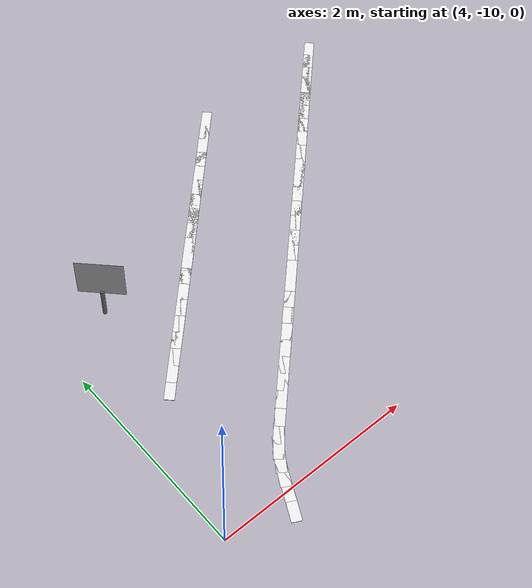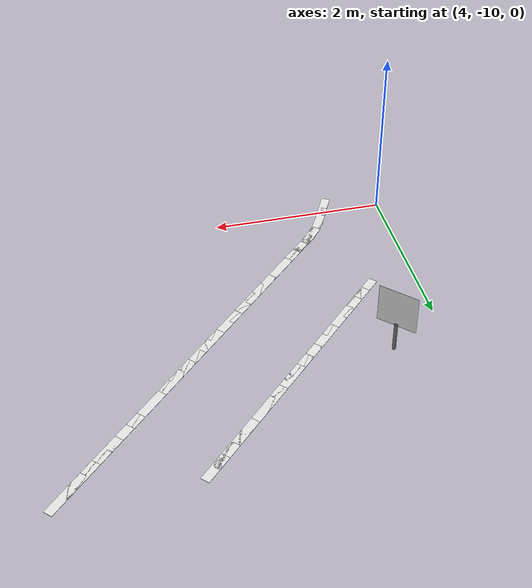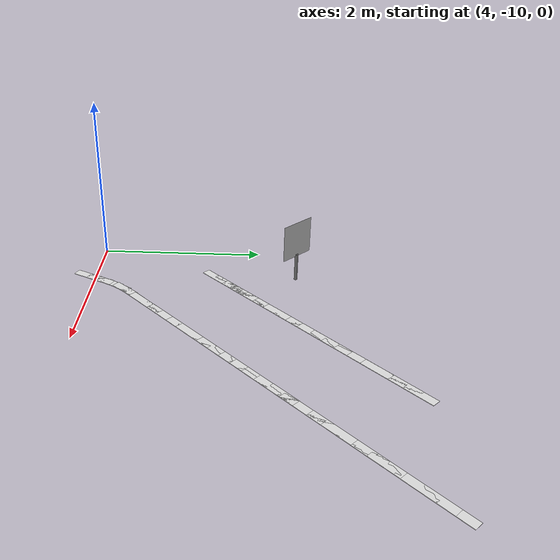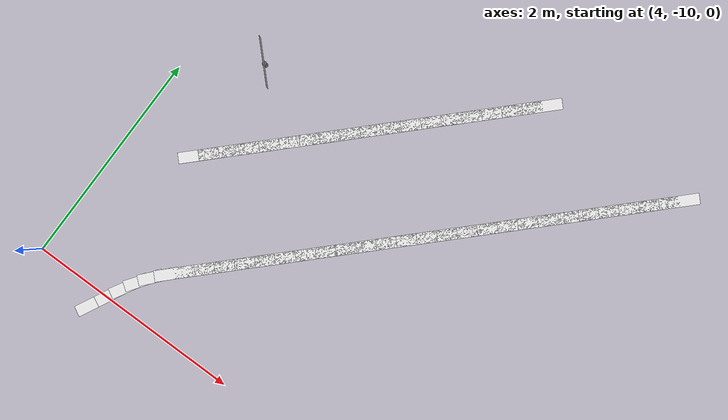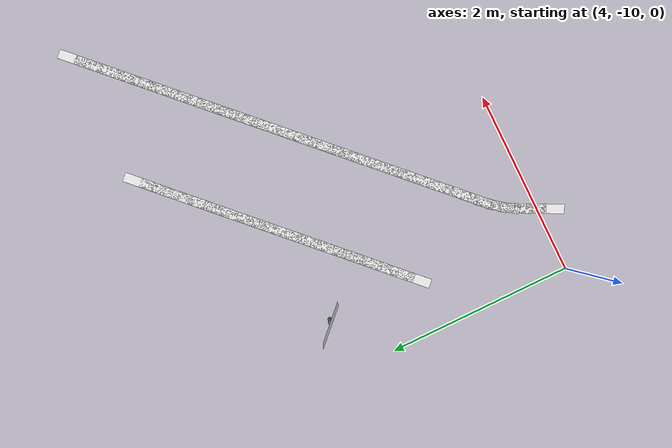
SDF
<sdf version="1.7">
 <world name="cone_lane">
  <model name="ground_plane">
   <static>true</static>
   <link name="link">
    <collision name="collision">
     <geometry><plane><normal>0 0 1</normal><size>150 150</size></plane></geometry>
     <surface><friction><ode><mu>1.0</mu></ode></friction></surface>
    </collision>
   </link>
  </model>
  <model name="line_L097">
   <static>true</static>
   <pose>8.236 -6.299 0.0030 0 0 -2.3562</pose>
   <link name="link">
    <visual name="v">
     <geometry><box><size>0.360 0.100 0.005</size></box></geometry>
     <material>
      <ambient>0.85 0.85 0.85 1</ambient>
      <diffuse>0.95 0.95 0.95 1</diffuse>
      <specular>0.1 0.1 0.1 1</specular>
      <emissive>0.7 0.7 0.7 1</emissive>
     </material>
    </visual>
   </link>
  </model>
  <model name="line_L098">
   <static>true</static>
   <pose>8.109 -6.426 0.0030 0 0 -2.3562</pose>
   <link name="link">
    <visual name="v">
     <geometry><box><size>0.360 0.100 0.005</size></box></geometry>
     <material>
      <ambient>0.85 0.85 0.85 1</ambient>
      <diffuse>0.95 0.95 0.95 1</diffuse>
      <specular>0.1 0.1 0.1 1</specular>
      <emissive>0.7 0.7 0.7 1</emissive>
     </material>
    </visual>
   </link>
  </model>
  <model name="line_L099">
   <static>true</static>
   <pose>7.982 -6.554 0.0030 0 0 -2.3562</pose>
   <link name="link">
    <visual name="v">
     <geometry><box><size>0.360 0.100 0.005</size></box></geometry>
     <material>
      <ambient>0.85 0.85 0.85 1</ambient>
      <diffuse>0.95 0.95 0.95 1</diffuse>
      <specular>0.1 0.1 0.1 1</specular>
      <emissive>0.7 0.7 0.7 1</emissive>
     </material>
    </visual>
   </link>
  </model>
  <model name="line_L100">
   <static>true</static>
   <pose>7.854 -6.681 0.0030 0 0 -2.3562</pose>
   <link name="link">
    <visual name="v">
     <geometry><box><size>0.360 0.100 0.005</size></box></geometry>
     <material>
      <ambient>0.85 0.85 0.85 1</ambient>
      <diffuse>0.95 0.95 0.95 1</diffuse>
      <specular>0.1 0.1 0.1 1</specular>
      <emissive>0.7 0.7 0.7 1</emissive>
     </material>
    </visual>
   </link>
  </model>
  <model name="line_L101">
   <static>true</static>
   <pose>7.727 -6.808 0.0030 0 0 -2.3562</pose>
   <link name="link">
    <visual name="v">
     <geometry><box><size>0.360 0.100 0.005</size></box></geometry>
     <material>
      <ambient>0.85 0.85 0.85 1</ambient>
      <diffuse>0.95 0.95 0.95 1</diffuse>
      <specular>0.1 0.1 0.1 1</specular>
      <emissive>0.7 0.7 0.7 1</emissive>
     </material>
    </visual>
   </link>
  </model>
  <model name="line_L102">
   <static>true</static>
   <pose>7.600 -6.936 0.0030 0 0 -2.3562</pose>
   <link name="link">
    <visual name="v">
     <geometry><box><size>0.360 0.100 0.005</size></box></geometry>
     <material>
      <ambient>0.85 0.85 0.85 1</ambient>
      <diffuse>0.95 0.95 0.95 1</diffuse>
      <specular>0.1 0.1 0.1 1</specular>
      <emissive>0.7 0.7 0.7 1</emissive>
     </material>
    </visual>
   </link>
  </model>
  <model name="line_L103">
   <static>true</static>
   <pose>7.473 -7.063 0.0030 0 0 -2.3562</pose>
   <link name="link">
    <visual name="v">
     <geometry><box><size>0.360 0.100 0.005</size></box></geometry>
     <material>
      <ambient>0.85 0.85 0.85 1</ambient>
      <diffuse>0.95 0.95 0.95 1</diffuse>
      <specular>0.1 0.1 0.1 1</specular>
      <emissive>0.7 0.7 0.7 1</emissive>
     </material>
    </visual>
   </link>
  </model>
  <model name="line_L104">
   <static>true</static>
   <pose>7.345 -7.190 0.0030 0 0 -2.3562</pose>
   <link name="link">
    <visual name="v">
     <geometry><box><size>0.360 0.100 0.005</size></box></geometry>
     <material>
      <ambient>0.85 0.85 0.85 1</ambient>
      <diffuse>0.95 0.95 0.95 1</diffuse>
      <specular>0.1 0.1 0.1 1</specular>
      <emissive>0.7 0.7 0.7 1</emissive>
     </material>
    </visual>
   </link>
  </model>
  <model name="line_L105">
   <static>true</static>
   <pose>7.218 -7.317 0.0030 0 0 -2.3562</pose>
   <link name="link">
    <visual name="v">
     <geometry><box><size>0.360 0.100 0.005</size></box></geometry>
     <material>
      <ambient>0.85 0.85 0.85 1</ambient>
      <diffuse>0.95 0.95 0.95 1</diffuse>
      <specular>0.1 0.1 0.1 1</specular>
      <emissive>0.7 0.7 0.7 1</emissive>
     </material>
    </visual>
   </link>
  </model>
  <model name="line_L106">
   <static>true</static>
   <pose>7.091 -7.445 0.0030 0 0 -2.3562</pose>
   <link name="link">
    <visual name="v">
     <geometry><box><size>0.360 0.100 0.005</size></box></geometry>
     <material>
      <ambient>0.85 0.85 0.85 1</ambient>
      <diffuse>0.95 0.95 0.95 1</diffuse>
      <specular>0.1 0.1 0.1 1</specular>
      <emissive>0.7 0.7 0.7 1</emissive>
     </material>
    </visual>
   </link>
  </model>
  <model name="line_L107">
   <static>true</static>
   <pose>6.964 -7.572 0.0030 0 0 -2.3562</pose>
   <link name="link">
    <visual name="v">
     <geometry><box><size>0.360 0.100 0.005</size></box></geometry>
     <material>
      <ambient>0.85 0.85 0.85 1</ambient>
      <diffuse>0.95 0.95 0.95 1</diffuse>
      <specular>0.1 0.1 0.1 1</specular>
      <emissive>0.7 0.7 0.7 1</emissive>
     </material>
    </visual>
   </link>
  </model>
  <model name="line_L108">
   <static>true</static>
   <pose>6.836 -7.699 0.0030 0 0 -2.3562</pose>
   <link name="link">
    <visual name="v">
     <geometry><box><size>0.360 0.100 0.005</size></box></geometry>
     <material>
      <ambient>0.85 0.85 0.85 1</ambient>
      <diffuse>0.95 0.95 0.95 1</diffuse>
      <specular>0.1 0.1 0.1 1</specular>
      <emissive>0.7 0.7 0.7 1</emissive>
     </material>
    </visual>
   </link>
  </model>
  <model name="line_L109">
   <static>true</static>
   <pose>6.709 -7.827 0.0030 0 0 -2.3562</pose>
   <link name="link">
    <visual name="v">
     <geometry><box><size>0.360 0.100 0.005</size></box></geometry>
     <material>
      <ambient>0.85 0.85 0.85 1</ambient>
      <diffuse>0.95 0.95 0.95 1</diffuse>
      <specular>0.1 0.1 0.1 1</specular>
      <emissive>0.7 0.7 0.7 1</emissive>
     </material>
    </visual>
   </link>
  </model>
  <model name="line_L110">
   <static>true</static>
   <pose>6.582 -7.954 0.0030 0 0 -2.3562</pose>
   <link name="link">
    <visual name="v">
     <geometry><box><size>0.360 0.100 0.005</size></box></geometry>
     <material>
      <ambient>0.85 0.85 0.85 1</ambient>
      <diffuse>0.95 0.95 0.95 1</diffuse>
      <specular>0.1 0.1 0.1 1</specular>
      <emissive>0.7 0.7 0.7 1</emissive>
     </material>
    </visual>
   </link>
  </model>
  <model name="line_L111">
   <static>true</static>
   <pose>6.454 -8.081 0.0030 0 0 -2.3562</pose>
   <link name="link">
    <visual name="v">
     <geometry><box><size>0.360 0.100 0.005</size></box></geometry>
     <material>
      <ambient>0.85 0.85 0.85 1</ambient>
      <diffuse>0.95 0.95 0.95 1</diffuse>
      <specular>0.1 0.1 0.1 1</specular>
      <emissive>0.7 0.7 0.7 1</emissive>
     </material>
    </visual>
   </link>
  </model>
  <model name="line_L112">
   <static>true</static>
   <pose>6.327 -8.208 0.0030 0 0 -2.3562</pose>
   <link name="link">
    <visual name="v">
     <geometry><box><size>0.360 0.100 0.005</size></box></geometry>
     <material>
      <ambient>0.85 0.85 0.85 1</ambient>
      <diffuse>0.95 0.95 0.95 1</diffuse>
      <specular>0.1 0.1 0.1 1</specular>
      <emissive>0.7 0.7 0.7 1</emissive>
     </material>
    </visual>
   </link>
  </model>
  <model name="line_L113">
   <static>true</static>
   <pose>6.200 -8.336 0.0030 0 0 -2.3562</pose>
   <link name="link">
    <visual name="v">
     <geometry><box><size>0.360 0.100 0.005</size></box></geometry>
     <material>
      <ambient>0.85 0.85 0.85 1</ambient>
      <diffuse>0.95 0.95 0.95 1</diffuse>
      <specular>0.1 0.1 0.1 1</specular>
      <emissive>0.7 0.7 0.7 1</emissive>
     </material>
    </visual>
   </link>
  </model>
  <model name="line_L114">
   <static>true</static>
   <pose>6.073 -8.463 0.0030 0 0 -2.3562</pose>
   <link name="link">
    <visual name="v">
     <geometry><box><size>0.360 0.100 0.005</size></box></geometry>
     <material>
      <ambient>0.85 0.85 0.85 1</ambient>
      <diffuse>0.95 0.95 0.95 1</diffuse>
      <specular>0.1 0.1 0.1 1</specular>
      <emissive>0.7 0.7 0.7 1</emissive>
     </material>
    </visual>
   </link>
  </model>
  <model name="line_L115">
   <static>true</static>
   <pose>5.945 -8.590 0.0030 0 0 -2.3562</pose>
   <link name="link">
    <visual name="v">
     <geometry><box><size>0.360 0.100 0.005</size></box></geometry>
     <material>
      <ambient>0.85 0.85 0.85 1</ambient>
      <diffuse>0.95 0.95 0.95 1</diffuse>
      <specular>0.1 0.1 0.1 1</specular>
      <emissive>0.7 0.7 0.7 1</emissive>
     </material>
    </visual>
   </link>
  </model>
  <model name="line_L116">
   <static>true</static>
   <pose>5.818 -8.718 0.0030 0 0 -2.3562</pose>
   <link name="link">
    <visual name="v">
     <geometry><box><size>0.360 0.100 0.005</size></box></geometry>
     <material>
      <ambient>0.85 0.85 0.85 1</ambient>
      <diffuse>0.95 0.95 0.95 1</diffuse>
      <specular>0.1 0.1 0.1 1</specular>
      <emissive>0.7 0.7 0.7 1</emissive>
     </material>
    </visual>
   </link>
  </model>
  <model name="line_L117">
   <static>true</static>
   <pose>5.691 -8.845 0.0030 0 0 -2.3562</pose>
   <link name="link">
    <visual name="v">
     <geometry><box><size>0.360 0.100 0.005</size></box></geometry>
     <material>
      <ambient>0.85 0.85 0.85 1</ambient>
      <diffuse>0.95 0.95 0.95 1</diffuse>
      <specular>0.1 0.1 0.1 1</specular>
      <emissive>0.7 0.7 0.7 1</emissive>
     </material>
    </visual>
   </link>
  </model>
  <model name="line_L118">
   <static>true</static>
   <pose>5.563 -8.972 0.0030 0 0 -2.3562</pose>
   <link name="link">
    <visual name="v">
     <geometry><box><size>0.360 0.100 0.005</size></box></geometry>
     <material>
      <ambient>0.85 0.85 0.85 1</ambient>
      <diffuse>0.95 0.95 0.95 1</diffuse>
      <specular>0.1 0.1 0.1 1</specular>
      <emissive>0.7 0.7 0.7 1</emissive>
     </material>
    </visual>
   </link>
  </model>
  <model name="line_L119">
   <static>true</static>
   <pose>5.436 -9.099 0.0030 0 0 -2.3562</pose>
   <link name="link">
    <visual name="v">
     <geometry><box><size>0.360 0.100 0.005</size></box></geometry>
     <material>
      <ambient>0.85 0.85 0.85 1</ambient>
      <diffuse>0.95 0.95 0.95 1</diffuse>
      <specular>0.1 0.1 0.1 1</specular>
      <emissive>0.7 0.7 0.7 1</emissive>
     </material>
    </visual>
   </link>
  </model>
  <model name="line_L120">
   <static>true</static>
   <pose>5.309 -9.227 0.0030 0 0 -2.3562</pose>
   <link name="link">
    <visual name="v">
     <geometry><box><size>0.360 0.100 0.005</size></box></geometry>
     <material>
      <ambient>0.85 0.85 0.85 1</ambient>
      <diffuse>0.95 0.95 0.95 1</diffuse>
      <specular>0.1 0.1 0.1 1</specular>
      <emissive>0.7 0.7 0.7 1</emissive>
     </material>
    </visual>
   </link>
  </model>
  <model name="line_L121">
   <static>true</static>
   <pose>5.182 -9.354 0.0030 0 0 -2.3562</pose>
   <link name="link">
    <visual name="v">
     <geometry><box><size>0.360 0.100 0.005</size></box></geometry>
     <material>
      <ambient>0.85 0.85 0.85 1</ambient>
      <diffuse>0.95 0.95 0.95 1</diffuse>
      <specular>0.1 0.1 0.1 1</specular>
      <emissive>0.7 0.7 0.7 1</emissive>
     </material>
    </visual>
   </link>
  </model>
  <model name="line_L122">
   <static>true</static>
   <pose>5.057 -9.479 0.0030 0 0 -2.3483</pose>
   <link name="link">
    <visual name="v">
     <geometry><box><size>0.360 0.100 0.005</size></box></geometry>
     <material>
      <ambient>0.85 0.85 0.85 1</ambient>
      <diffuse>0.95 0.95 0.95 1</diffuse>
      <specular>0.1 0.1 0.1 1</specular>
      <emissive>0.7 0.7 0.7 1</emissive>
     </material>
    </visual>
   </link>
  </model>
  <model name="line_L123">
   <static>true</static>
   <pose>4.956 -9.587 0.0030 0 0 -2.2834</pose>
   <link name="link">
    <visual name="v">
     <geometry><box><size>0.360 0.100 0.005</size></box></geometry>
     <material>
      <ambient>0.85 0.85 0.85 1</ambient>
      <diffuse>0.95 0.95 0.95 1</diffuse>
      <specular>0.1 0.1 0.1 1</specular>
      <emissive>0.7 0.7 0.7 1</emissive>
     </material>
    </visual>
   </link>
  </model>
  <model name="line_L124">
   <static>true</static>
   <pose>4.876 -9.689 0.0030 0 0 -2.1814</pose>
   <link name="link">
    <visual name="v">
     <geometry><box><size>0.360 0.100 0.005</size></box></geometry>
     <material>
      <ambient>0.85 0.85 0.85 1</ambient>
      <diffuse>0.95 0.95 0.95 1</diffuse>
      <specular>0.1 0.1 0.1 1</specular>
      <emissive>0.7 0.7 0.7 1</emissive>
     </material>
    </visual>
   </link>
  </model>
  <model name="line_L125">
   <static>true</static>
   <pose>4.804 -9.805 0.0030 0 0 -2.0848</pose>
   <link name="link">
    <visual name="v">
     <geometry><box><size>0.360 0.100 0.005</size></box></geometry>
     <material>
      <ambient>0.85 0.85 0.85 1</ambient>
      <diffuse>0.95 0.95 0.95 1</diffuse>
      <specular>0.1 0.1 0.1 1</specular>
      <emissive>0.7 0.7 0.7 1</emissive>
     </material>
    </visual>
   </link>
  </model>
  <model name="line_L126">
   <static>true</static>
   <pose>4.738 -9.931 0.0030 0 0 -2.0337</pose>
   <link name="link">
    <visual name="v">
     <geometry><box><size>0.360 0.100 0.005</size></box></geometry>
     <material>
      <ambient>0.85 0.85 0.85 1</ambient>
      <diffuse>0.95 0.95 0.95 1</diffuse>
      <specular>0.1 0.1 0.1 1</specular>
      <emissive>0.7 0.7 0.7 1</emissive>
     </material>
    </visual>
   </link>
  </model>
  <model name="line_L127">
   <static>true</static>
   <pose>4.653 -10.103 0.0030 0 0 -2.0381</pose>
   <link name="link">
    <visual name="v">
     <geometry><box><size>0.360 0.100 0.005</size></box></geometry>
     <material>
      <ambient>0.85 0.85 0.85 1</ambient>
      <diffuse>0.95 0.95 0.95 1</diffuse>
      <specular>0.1 0.1 0.1 1</specular>
      <emissive>0.7 0.7 0.7 1</emissive>
     </material>
    </visual>
   </link>
  </model>
  <model name="line_R103">
   <static>true</static>
   <pose>6.766 -6.356 0.0030 0 0 -2.3562</pose>
   <link name="link">
    <visual name="v">
     <geometry><box><size>0.360 0.100 0.005</size></box></geometry>
     <material>
      <ambient>0.85 0.85 0.85 1</ambient>
      <diffuse>0.95 0.95 0.95 1</diffuse>
      <specular>0.1 0.1 0.1 1</specular>
      <emissive>0.7 0.7 0.7 1</emissive>
     </material>
    </visual>
   </link>
  </model>
  <model name="line_R104">
   <static>true</static>
   <pose>6.638 -6.483 0.0030 0 0 -2.3562</pose>
   <link name="link">
    <visual name="v">
     <geometry><box><size>0.360 0.100 0.005</size></box></geometry>
     <material>
      <ambient>0.85 0.85 0.85 1</ambient>
      <diffuse>0.95 0.95 0.95 1</diffuse>
      <specular>0.1 0.1 0.1 1</specular>
      <emissive>0.7 0.7 0.7 1</emissive>
     </material>
    </visual>
   </link>
  </model>
  <model name="line_R105">
   <static>true</static>
   <pose>6.511 -6.610 0.0030 0 0 -2.3562</pose>
   <link name="link">
    <visual name="v">
     <geometry><box><size>0.360 0.100 0.005</size></box></geometry>
     <material>
      <ambient>0.85 0.85 0.85 1</ambient>
      <diffuse>0.95 0.95 0.95 1</diffuse>
      <specular>0.1 0.1 0.1 1</specular>
      <emissive>0.7 0.7 0.7 1</emissive>
     </material>
    </visual>
   </link>
  </model>
  <model name="line_R106">
   <static>true</static>
   <pose>6.384 -6.738 0.0030 0 0 -2.3562</pose>
   <link name="link">
    <visual name="v">
     <geometry><box><size>0.360 0.100 0.005</size></box></geometry>
     <material>
      <ambient>0.85 0.85 0.85 1</ambient>
      <diffuse>0.95 0.95 0.95 1</diffuse>
      <specular>0.1 0.1 0.1 1</specular>
      <emissive>0.7 0.7 0.7 1</emissive>
     </material>
    </visual>
   </link>
  </model>
  <model name="line_R107">
   <static>true</static>
   <pose>6.256 -6.865 0.0030 0 0 -2.3562</pose>
   <link name="link">
    <visual name="v">
     <geometry><box><size>0.360 0.100 0.005</size></box></geometry>
     <material>
      <ambient>0.85 0.85 0.85 1</ambient>
      <diffuse>0.95 0.95 0.95 1</diffuse>
      <specular>0.1 0.1 0.1 1</specular>
      <emissive>0.7 0.7 0.7 1</emissive>
     </material>
    </visual>
   </link>
  </model>
  <model name="line_R108">
   <static>true</static>
   <pose>6.129 -6.992 0.0030 0 0 -2.3562</pose>
   <link name="link">
    <visual name="v">
     <geometry><box><size>0.360 0.100 0.005</size></box></geometry>
     <material>
      <ambient>0.85 0.85 0.85 1</ambient>
      <diffuse>0.95 0.95 0.95 1</diffuse>
      <specular>0.1 0.1 0.1 1</specular>
      <emissive>0.7 0.7 0.7 1</emissive>
     </material>
    </visual>
   </link>
  </model>
  <model name="line_R109">
   <static>true</static>
   <pose>6.002 -7.119 0.0030 0 0 -2.3562</pose>
   <link name="link">
    <visual name="v">
     <geometry><box><size>0.360 0.100 0.005</size></box></geometry>
     <material>
      <ambient>0.85 0.85 0.85 1</ambient>
      <diffuse>0.95 0.95 0.95 1</diffuse>
      <specular>0.1 0.1 0.1 1</specular>
      <emissive>0.7 0.7 0.7 1</emissive>
     </material>
    </visual>
   </link>
  </model>
  <model name="line_R110">
   <static>true</static>
   <pose>5.875 -7.247 0.0030 0 0 -2.3562</pose>
   <link name="link">
    <visual name="v">
     <geometry><box><size>0.360 0.100 0.005</size></box></geometry>
     <material>
      <ambient>0.85 0.85 0.85 1</ambient>
      <diffuse>0.95 0.95 0.95 1</diffuse>
      <specular>0.1 0.1 0.1 1</specular>
      <emissive>0.7 0.7 0.7 1</emissive>
     </material>
    </visual>
   </link>
  </model>
  <model name="line_R111">
   <static>true</static>
   <pose>5.747 -7.374 0.0030 0 0 -2.3562</pose>
   <link name="link">
    <visual name="v">
     <geometry><box><size>0.360 0.100 0.005</size></box></geometry>
     <material>
      <ambient>0.85 0.85 0.85 1</ambient>
      <diffuse>0.95 0.95 0.95 1</diffuse>
      <specular>0.1 0.1 0.1 1</specular>
      <emissive>0.7 0.7 0.7 1</emissive>
     </material>
    </visual>
   </link>
  </model>
  <model name="line_R112">
   <static>true</static>
   <pose>5.620 -7.501 0.0030 0 0 -2.3562</pose>
   <link name="link">
    <visual name="v">
     <geometry><box><size>0.360 0.100 0.005</size></box></geometry>
     <material>
      <ambient>0.85 0.85 0.85 1</ambient>
      <diffuse>0.95 0.95 0.95 1</diffuse>
      <specular>0.1 0.1 0.1 1</specular>
      <emissive>0.7 0.7 0.7 1</emissive>
     </material>
    </visual>
   </link>
  </model>
  <model name="line_R113">
   <static>true</static>
   <pose>5.493 -7.629 0.0030 0 0 -2.3562</pose>
   <link name="link">
    <visual name="v">
     <geometry><box><size>0.360 0.100 0.005</size></box></geometry>
     <material>
      <ambient>0.85 0.85 0.85 1</ambient>
      <diffuse>0.95 0.95 0.95 1</diffuse>
      <specular>0.1 0.1 0.1 1</specular>
      <emissive>0.7 0.7 0.7 1</emissive>
     </material>
    </visual>
   </link>
  </model>
  <model name="line_R114">
   <static>true</static>
   <pose>5.365 -7.756 0.0030 0 0 -2.3562</pose>
   <link name="link">
    <visual name="v">
     <geometry><box><size>0.360 0.100 0.005</size></box></geometry>
     <material>
      <ambient>0.85 0.85 0.85 1</ambient>
      <diffuse>0.95 0.95 0.95 1</diffuse>
      <specular>0.1 0.1 0.1 1</specular>
      <emissive>0.7 0.7 0.7 1</emissive>
     </material>
    </visual>
   </link>
  </model>
  <model name="line_R115">
   <static>true</static>
   <pose>5.238 -7.883 0.0030 0 0 -2.3562</pose>
   <link name="link">
    <visual name="v">
     <geometry><box><size>0.360 0.100 0.005</size></box></geometry>
     <material>
      <ambient>0.85 0.85 0.85 1</ambient>
      <diffuse>0.95 0.95 0.95 1</diffuse>
      <specular>0.1 0.1 0.1 1</specular>
      <emissive>0.7 0.7 0.7 1</emissive>
     </material>
    </visual>
   </link>
  </model>
  <model name="line_R116">
   <static>true</static>
   <pose>5.111 -8.010 0.0030 0 0 -2.3562</pose>
   <link name="link">
    <visual name="v">
     <geometry><box><size>0.360 0.100 0.005</size></box></geometry>
     <material>
      <ambient>0.85 0.85 0.85 1</ambient>
      <diffuse>0.95 0.95 0.95 1</diffuse>
      <specular>0.1 0.1 0.1 1</specular>
      <emissive>0.7 0.7 0.7 1</emissive>
     </material>
    </visual>
   </link>
  </model>
  <model name="line_R117">
   <static>true</static>
   <pose>4.984 -8.138 0.0030 0 0 -2.3562</pose>
   <link name="link">
    <visual name="v">
     <geometry><box><size>0.360 0.100 0.005</size></box></geometry>
     <material>
      <ambient>0.85 0.85 0.85 1</ambient>
      <diffuse>0.95 0.95 0.95 1</diffuse>
      <specular>0.1 0.1 0.1 1</specular>
      <emissive>0.7 0.7 0.7 1</emissive>
     </material>
    </visual>
   </link>
  </model>
  <model name="line_R118">
   <static>true</static>
   <pose>4.856 -8.265 0.0030 0 0 -2.3562</pose>
   <link name="link">
    <visual name="v">
     <geometry><box><size>0.360 0.100 0.005</size></box></geometry>
     <material>
      <ambient>0.85 0.85 0.85 1</ambient>
      <diffuse>0.95 0.95 0.95 1</diffuse>
      <specular>0.1 0.1 0.1 1</specular>
      <emissive>0.7 0.7 0.7 1</emissive>
     </material>
    </visual>
   </link>
  </model>
  <model name="line_R119">
   <static>true</static>
   <pose>4.729 -8.392 0.0030 0 0 -2.3562</pose>
   <link name="link">
    <visual name="v">
     <geometry><box><size>0.360 0.100 0.005</size></box></geometry>
     <material>
      <ambient>0.85 0.85 0.85 1</ambient>
      <diffuse>0.95 0.95 0.95 1</diffuse>
      <specular>0.1 0.1 0.1 1</specular>
      <emissive>0.7 0.7 0.7 1</emissive>
     </material>
    </visual>
   </link>
  </model>
  <model name="line_R120">
   <static>true</static>
   <pose>4.602 -8.520 0.0030 0 0 -2.3562</pose>
   <link name="link">
    <visual name="v">
     <geometry><box><size>0.360 0.100 0.005</size></box></geometry>
     <material>
      <ambient>0.85 0.85 0.85 1</ambient>
      <diffuse>0.95 0.95 0.95 1</diffuse>
      <specular>0.1 0.1 0.1 1</specular>
      <emissive>0.7 0.7 0.7 1</emissive>
     </material>
    </visual>
   </link>
  </model>
  <include>
   <name>sign_winding</name>
   <uri>model://sign_winding</uri>
   <pose>4.602 -7.530 0 0 0 0.7854</pose>
  </include>
 </world>
</sdf>
